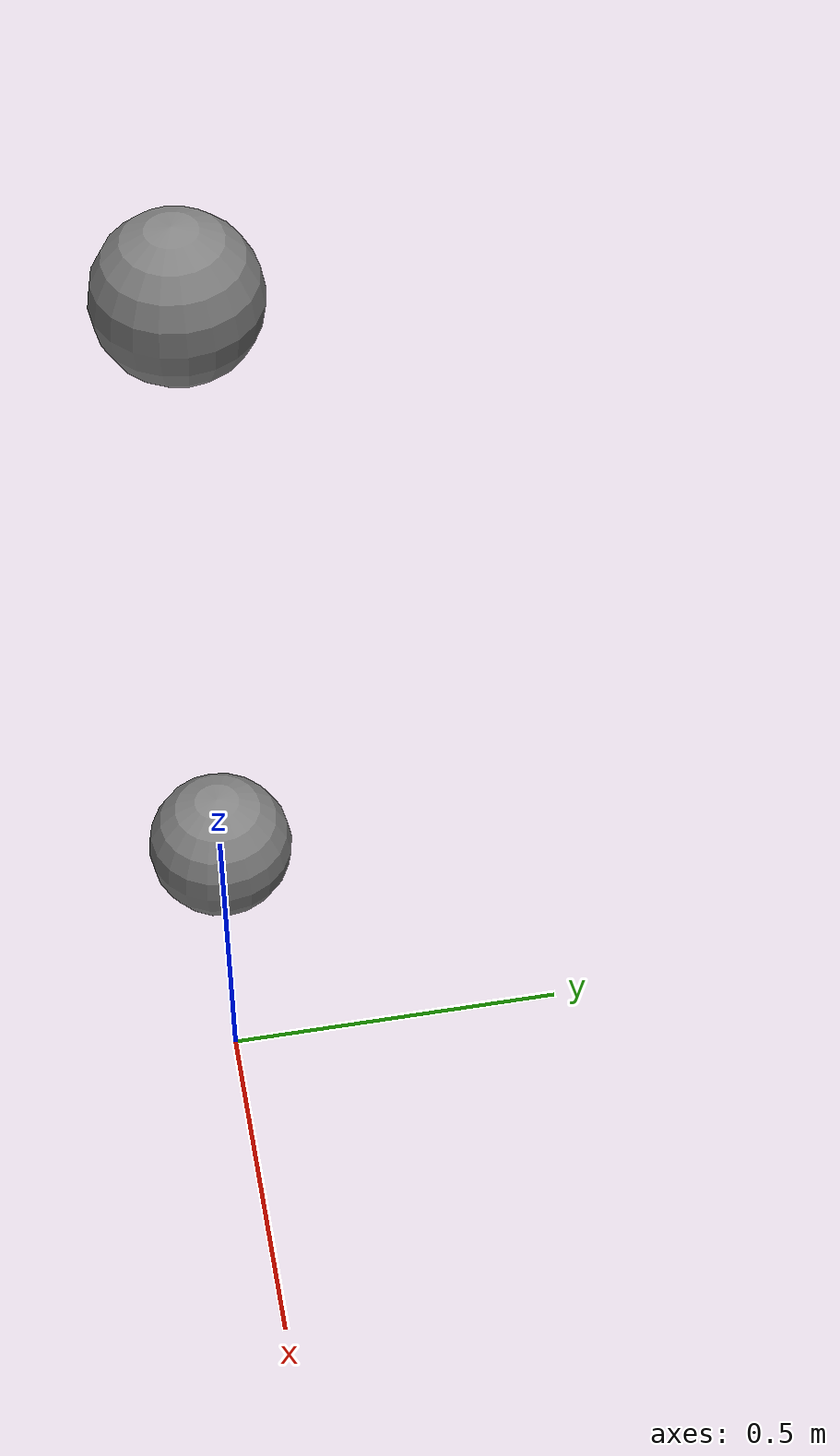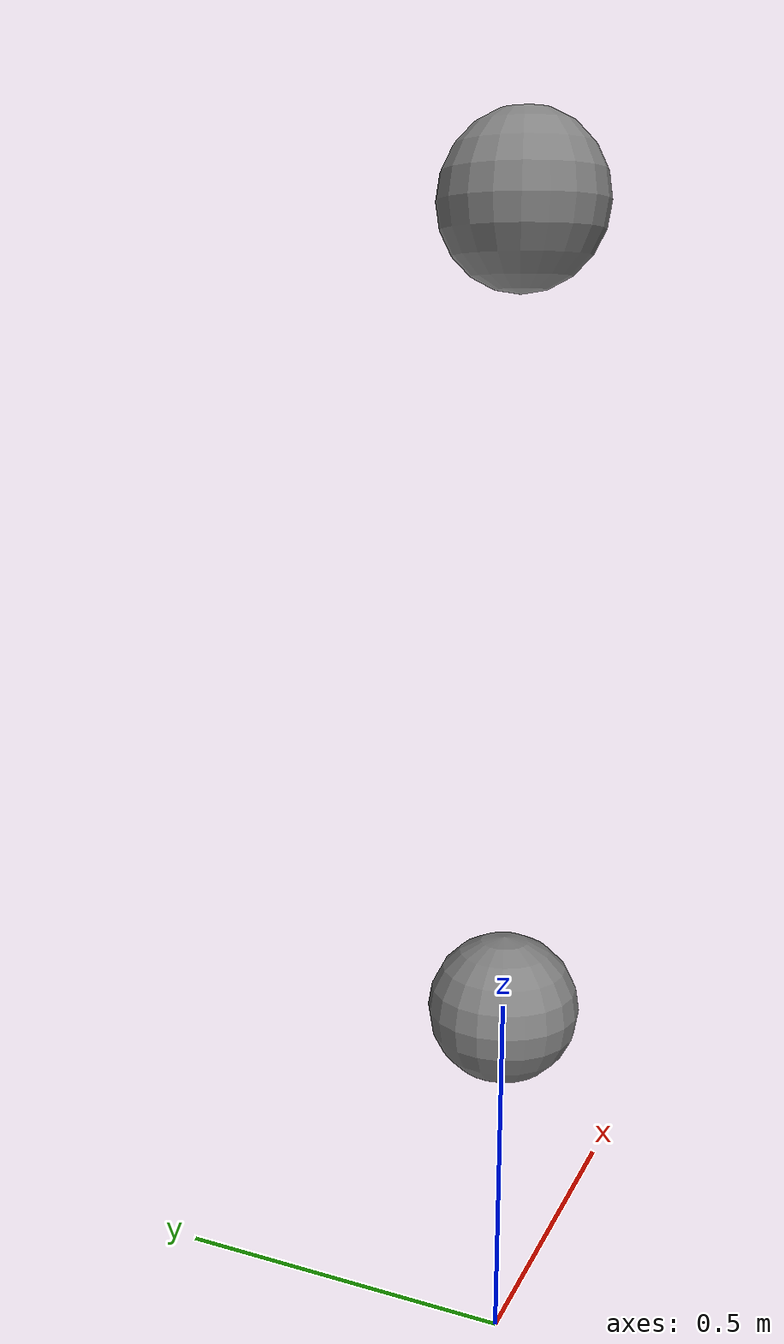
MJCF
<mujoco model="distance_test">
            <option gravity="0 0 -9.81" timestep="0.001"/>
            <worldbody>
                <body name="body1" pos="0 0 1.5">
                    <freejoint name="j1"/>
                    <geom name="g1" type="sphere" size="0.1" mass="1.0"/>
                </body>
                <body name="body2" pos="0 0 0.5">
                    <freejoint name="j2"/>
                    <geom name="g2" type="sphere" size="0.1" mass="1.0"/>
                </body>
            </worldbody>
            <equality>
                <distance geom1="g1" geom2="g2" distance="1.0"/>
            </equality>
        </mujoco>
